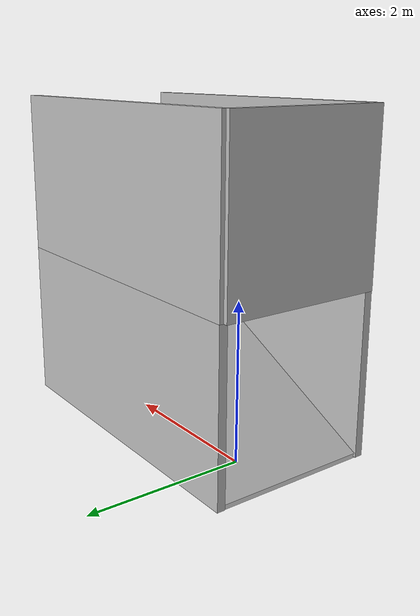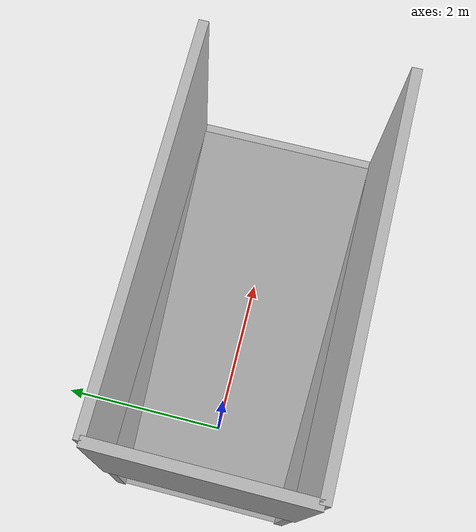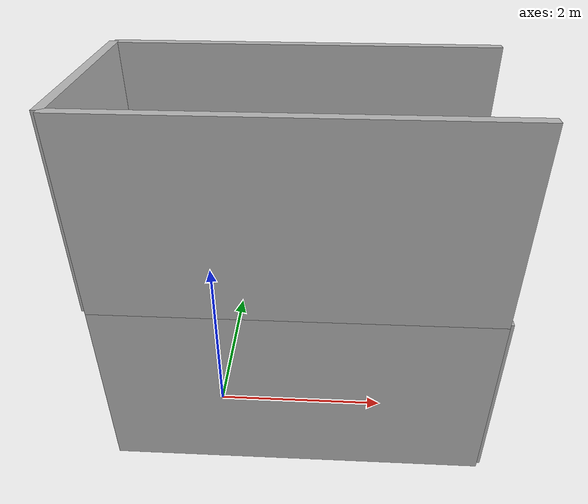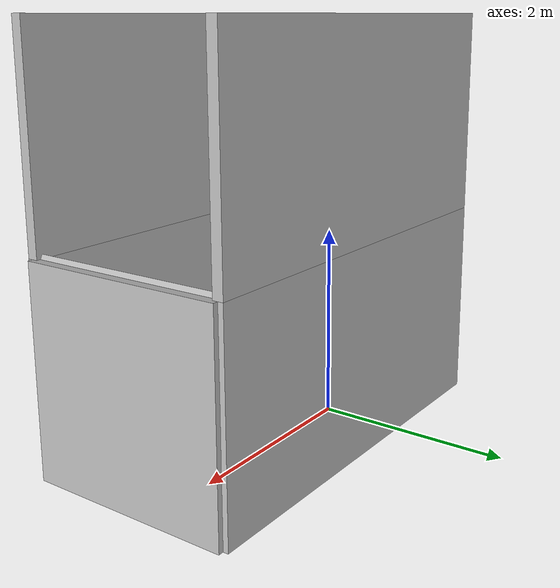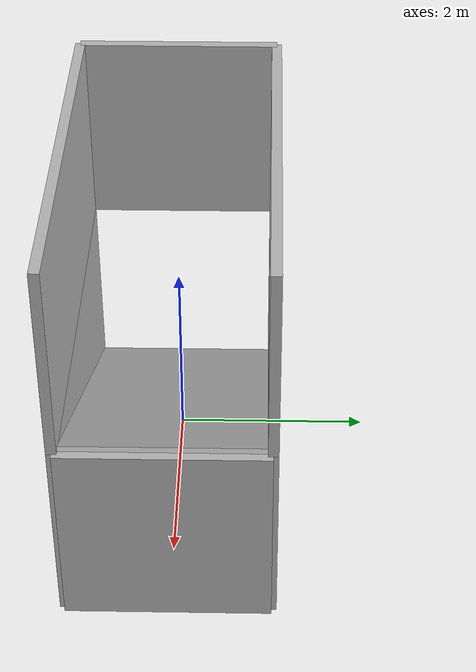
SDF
<?xml version="1.0" ?>
<sdf version="1.4">
    <model name="multi_room_ramp">
      <pose>1.0 0.0 0.2 0 0 0</pose>
      <static>true</static>
      <link name="left">
        <visual name="box_visual">
          <pose>0 1 1 0 0 0</pose>
          <geometry>
          <mesh>
            <uri>model://gazebo_worlds_cdt/models/multi_room_ramp/meshes/wall_box.dae</uri>
            <scale>4 0.1 2</scale>
          </mesh>
          </geometry>
        </visual>
        <collision name="box_collision">
          <pose>0 1 1 0 0 0</pose>
          <geometry>
            <box>
              <size>4 0.1 2</size>
            </box>
          </geometry>
        </collision>
      </link>

      <link name="right">
        <visual name="box_visual">
          <pose>0 -1 1 0 0 0</pose>
          <geometry>
          <mesh>
            <uri>model://gazebo_worlds_cdt/models/multi_room_ramp/meshes/wall_box.dae</uri>
            <scale>4 0.1 2</scale>
          </mesh>
          </geometry>
        </visual>
        <collision name="box_collision">
          <pose>0 -1 1 0 0 0</pose>
          <geometry>
            <box>
              <size>4 0.1 2</size>
            </box>
          </geometry>
        </collision>
      </link>
      <link name="endblock">
        <visual name="box_visual">
          <pose>2 0 1 0 0 0</pose>
          <geometry>
          <mesh>
            <uri>model://gazebo_worlds_cdt/models/multi_room_ramp/meshes/wall_box.dae</uri>
            <scale>0.1 2 2</scale>
          </mesh>
          </geometry>
        </visual>
        <collision name="box_collision">
          <pose>2 0 1 0 0 0</pose>
          <geometry>
            <box>
              <size>0.1 2 2</size>
            </box>
          </geometry>
        </collision>
      </link>
      <link name="slope">
        <visual name="box_visual">
          <pose>0 0 1 0 1.1 0</pose>
          <geometry>
          <mesh>
            <uri>model://gazebo_worlds_cdt/models/multi_room_ramp/meshes/floor.dae</uri>
            <scale>0.1 2 4.4</scale>
          </mesh>
          </geometry>
        </visual>
        <collision name="box_collision">
          <pose>0 0 1 0 1.1 0</pose>
          <geometry>
            <box>
              <size>0.1 2 4.4</size>
            </box>
          </geometry>
        </collision>
      </link>

      <link name="endblock_upper_guard">
        <visual name="box_visual">
          <pose>-2 0 3 0 0 0</pose>
          <geometry>
          <mesh>
            <uri>model://gazebo_worlds_cdt/models/multi_room_ramp/meshes/wall_box.dae</uri>
            <scale>0.1 2 2</scale>
          </mesh>
          </geometry>
        </visual>
        <collision name="box_collision">
          <pose>-2 0 3 0 0 0</pose>
          <geometry>
            <box>
              <size>0.1 2 2</size>
            </box>
          </geometry>
        </collision>
      </link>
      <link name="left_upper_guard">
        <visual name="box_visual">
          <pose>0 1 3 0 0 0</pose>
          <geometry>
          <mesh>
            <uri>model://gazebo_worlds_cdt/models/multi_room_ramp/meshes/wall_box.dae</uri>
            <scale>4 0.1 2</scale>
          </mesh>
          </geometry>
        </visual>
        <collision name="box_collision">
          <pose>0 1 3 0 0 0</pose>
          <geometry>
            <box>
              <size>4 0.1 2</size>
            </box>
          </geometry>
        </collision>
      </link>
      <link name="right_upper_guard">
        <visual name="box_visual">
          <pose>0 -1 3 0 0 0</pose>
          <geometry>
          <mesh>
            <uri>model://gazebo_worlds_cdt/models/multi_room_ramp/meshes/wall_box.dae</uri>
            <scale>4 0.1 2</scale>
          </mesh>
          </geometry>
        </visual>
        <collision name="box_collision">
          <pose>0 -1 3 0 0 0</pose>
          <geometry>
            <box>
              <size>4 0.1 2</size>
            </box>
          </geometry>
        </collision>
      </link>
    </model>
</sdf>
